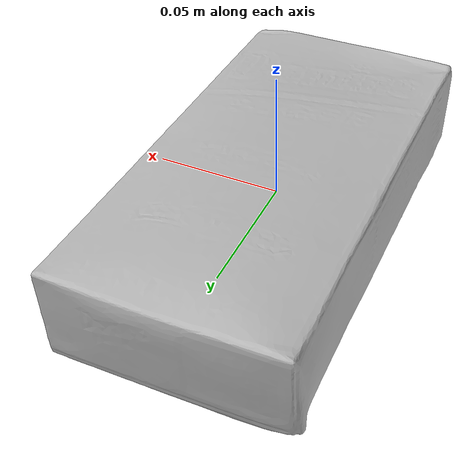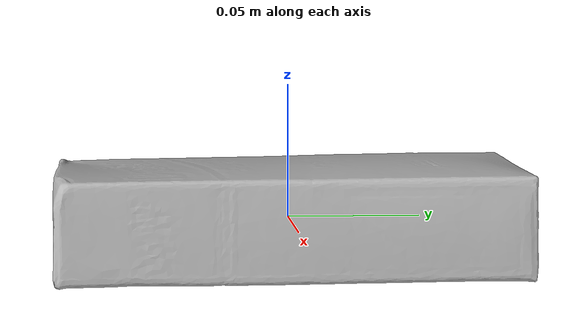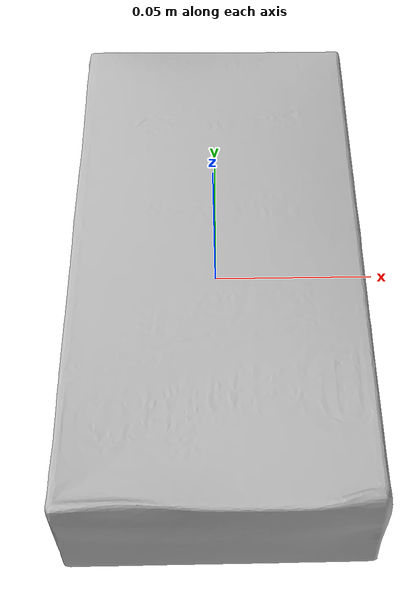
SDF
<?xml version="1.0"?>
<sdf version='1.6'>
<model name="004_sugar_box">
  <link name="base_link_sugar">

    <inertial>
      <pose frame=''>0 0 0 0 0 0</pose>
      <mass>0.514000</mass>
        <inertia>
          <ixx>0.001418</ixx>
          <ixy>0</ixy>
          <ixz>0</ixz>
          <iyy>0.000455</iyy>
          <iyz>0</iyz>
          <izz>0.001699</izz>
        </inertia>
    </inertial>

    <visual name='base_link_sugar'>
      <pose frame=''>0 0 0 0 0 0</pose>
      <geometry>
        <mesh>
          <uri>../meshes/004_sugar_box_textured.obj</uri>
        </mesh>
      </geometry>
    </visual>

    <collision name='sugar_box_collision'>
      <pose>0 0 0 0 0 0</pose>
      <geometry>
        <box>
          <size>0.086700 0.170300 0.039100</size>
        </box>
      </geometry>
      <material>
        <diffuse>0 1 0 1.0</diffuse>
      </material>
    </collision>

    <collision name='point_collision1'>
      <pose>0.043850 0.085650 0.020050 0 0 0 </pose>
      <geometry>
        <sphere><radius>1e-7</radius></sphere>
      </geometry>
    </collision>

    <collision name='point_collision2'>
      <pose>0.043850 -0.085650 0.020050 0 0 0 </pose>
      <geometry>
        <sphere><radius>1e-7</radius></sphere>
      </geometry>
    </collision>

    <collision name='point_collision3'>
      <pose>-0.043850 0.085650 0.020050 0 0 0 </pose>
      <geometry>
        <sphere><radius>1e-7</radius></sphere>
      </geometry>
    </collision>

    <collision name='point_collision4'>
      <pose>-0.043850 -0.085650 0.020050 0 0 0 </pose>
      <geometry>
        <sphere><radius>1e-7</radius></sphere>
      </geometry>
    </collision>

    <collision name='point_collision5'>
      <pose>0.043850 0.085650 -0.020050 0 0 0 </pose>
      <geometry>
        <sphere><radius>1e-7</radius></sphere>
      </geometry>
    </collision>

    <collision name='point_collision6'>
      <pose>0.043850 -0.085650 -0.020050 0 0 0 </pose>
      <geometry>
        <sphere><radius>1e-7</radius></sphere>
      </geometry>
    </collision>

    <collision name='point_collision7'>
      <pose>-0.043850 0.085650 -0.020050 0 0 0 </pose>
      <geometry>
        <sphere><radius>1e-7</radius></sphere>
      </geometry>
    </collision>

    <collision name='point_collision8'>
      <pose>-0.043850 -0.085650 -0.020050 0 0 0 </pose>
      <geometry>
        <sphere><radius>1e-7</radius></sphere>
      </geometry>
    </collision>

  </link>
</model>
</sdf>
